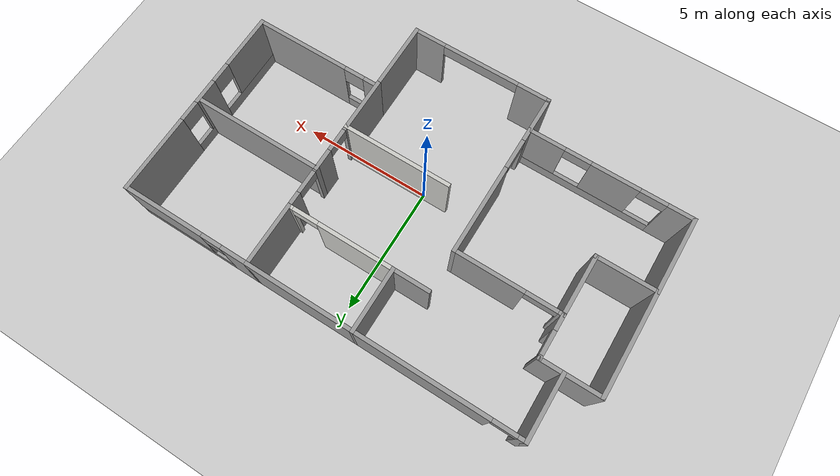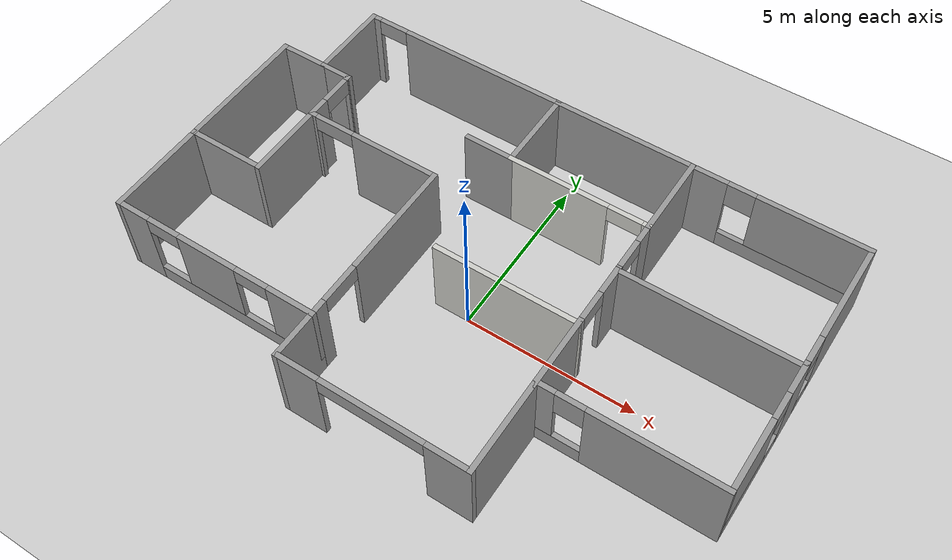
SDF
<sdf version="1.7">
 <world name="default">
  <model name="ground_plane">
   <static>1</static>
   <link name="link">
    <collision name="collision">
     <geometry><plane><normal>0 0 1</normal><size>100 100</size></plane></geometry>
     <surface>
      <contact><collide_bitmask>65535</collide_bitmask></contact>
      <friction><ode><mu>100</mu><mu2>50</mu2></ode></friction>
     </surface>
    </collision>
    <visual name="visual">
     <cast_shadows>0</cast_shadows>
     <geometry><plane><normal>0 0 1</normal><size>100 100</size></plane></geometry>
     <material>
      <script><uri>file://media/materials/scripts/gazebo.material</uri><name>Gazebo/Grey</name></script>
     </material>
    </visual>
   </link>
  </model>
  <gravity>0 0 -9.8</gravity>
  <magnetic_field>6e-06 2.3e-05 -4.2e-05</magnetic_field>
  <atmosphere type="adiabatic"/>
  <physics type="ode">
   <max_step_size>0.001</max_step_size>
   <real_time_factor>1</real_time_factor>
   <real_time_update_rate>1000</real_time_update_rate>
  </physics>
  <scene><ambient>0.4 0.4 0.4 1</ambient><background>0.7 0.7 0.7 1</background><shadows>1</shadows></scene>
  <spherical_coordinates>
   <surface_model>EARTH_WGS84</surface_model>
   <latitude_deg>0</latitude_deg>
   <longitude_deg>0</longitude_deg>
   <elevation>0</elevation>
   <heading_deg>0</heading_deg>
  </spherical_coordinates>
  <model name="Untitled">
   <pose>-0.166269 0.662107 0 0 -0 0</pose>
   <link name="Wall_109">
    <collision name="Wall_109_Collision">
     <geometry><box><size>4.25 0.15 2.5</size></box></geometry>
     <pose>0 0 1.25 0 -0 0</pose>
    </collision>
    <visual name="Wall_109_Visual">
     <pose>0 0 1.25 0 -0 0</pose>
     <geometry><box><size>4.25 0.15 2.5</size></box></geometry>
     <material>
      <script><uri>file://media/materials/scripts/gazebo.material</uri><name>Gazebo/CeilingTiled</name></script>
      <ambient>1 1 1 1</ambient>
     </material>
     <meta><layer>0</layer></meta>
    </visual>
    <pose>1.275 -0.6 0 0 -0 0</pose>
   </link>
   <link name="Wall_113">
    <collision name="Wall_113_Collision">
     <geometry><box><size>2.5 0.15 2.5</size></box></geometry>
     <pose>0 0 1.25 0 -0 0</pose>
    </collision>
    <visual name="Wall_113_Visual">
     <pose>0 0 1.25 0 -0 0</pose>
     <geometry><box><size>2.5 0.15 2.5</size></box></geometry>
     <material>
      <script><uri>file://media/materials/scripts/gazebo.material</uri><name>Gazebo/Grey</name></script>
      <ambient>1 1 1 1</ambient>
     </material>
     <meta><layer>0</layer></meta>
    </visual>
    <pose>-0.775 4.025 0 0 -0 1.5708</pose>
   </link>
   <link name="Wall_115">
    <collision name="Wall_115_Collision">
     <geometry><box><size>2.5 0.15 2.5</size></box></geometry>
     <pose>0 0 1.25 0 -0 0</pose>
    </collision>
    <visual name="Wall_115_Visual">
     <pose>0 0 1.25 0 -0 0</pose>
     <geometry><box><size>2.5 0.15 2.5</size></box></geometry>
     <material>
      <script><uri>file://media/materials/scripts/gazebo.material</uri><name>Gazebo/Grey</name></script>
      <ambient>1 1 1 1</ambient>
     </material>
     <meta><layer>0</layer></meta>
    </visual>
    <pose>3.325 4.025 0 0 -0 1.5708</pose>
   </link>
   <link name="Wall_119">
    <pose>1.275 2.85 0 0 -0 0</pose>
    <visual name="Wall_119_Visual_0">
     <pose>-0.621896 0 1.25 0 -0 0</pose>
     <geometry><box><size>3.00621 0.15 2.5</size></box></geometry>
     <material>
      <script><uri>file://media/materials/scripts/gazebo.material</uri><name>Gazebo/CeilingTiled</name></script>
      <ambient>1 1 1 1</ambient>
     </material>
     <meta><layer>0</layer></meta>
    </visual>
    <collision name="Wall_119_Collision_0">
     <geometry><box><size>3.00621 0.15 2.5</size></box></geometry>
     <pose>-0.621896 0 1.25 0 -0 0</pose>
    </collision>
    <visual name="Wall_119_Visual_1">
     <pose>2.0031 0 1.25 0 -0 0</pose>
     <geometry><box><size>0.243793 0.15 2.5</size></box></geometry>
     <material>
      <script><uri>file://media/materials/scripts/gazebo.material</uri><name>Gazebo/CeilingTiled</name></script>
      <ambient>1 1 1 1</ambient>
     </material>
     <meta><layer>0</layer></meta>
    </visual>
    <collision name="Wall_119_Collision_1">
     <geometry><box><size>0.243793 0.15 2.5</size></box></geometry>
     <pose>2.0031 0 1.25 0 -0 0</pose>
    </collision>
    <visual name="Wall_119_Visual_2">
     <pose>1.38121 0 2.25 0 -0 0</pose>
     <geometry><box><size>1 0.15 0.5</size></box></geometry>
     <material>
      <script><uri>file://media/materials/scripts/gazebo.material</uri><name>Gazebo/CeilingTiled</name></script>
      <ambient>1 1 1 1</ambient>
     </material>
     <meta><layer>0</layer></meta>
    </visual>
    <collision name="Wall_119_Collision_2">
     <geometry><box><size>1 0.15 0.5</size></box></geometry>
     <pose>1.38121 0 2.25 0 -0 0</pose>
    </collision>
   </link>
   <link name="Wall_122">
    <collision name="Wall_122_Collision">
     <geometry><box><size>3 0.15 2.5</size></box></geometry>
     <pose>0 0 1.25 0 -0 0</pose>
    </collision>
    <visual name="Wall_122_Visual">
     <pose>0 0 1.25 0 -0 0</pose>
     <geometry><box><size>3 0.15 2.5</size></box></geometry>
     <material>
      <script><uri>file://media/materials/scripts/gazebo.material</uri><name>Gazebo/Grey</name></script>
      <ambient>1 1 1 1</ambient>
     </material>
     <meta><layer>0</layer></meta>
    </visual>
    <pose>-8.325 -2.425 0 0 -0 -1.5708</pose>
   </link>
   <link name="Wall_125">
    <collision name="Wall_125_Collision">
     <geometry><box><size>4.25 0.15 2.5</size></box></geometry>
     <pose>0 0 1.25 0 -0 0</pose>
    </collision>
    <visual name="Wall_125_Visual">
     <pose>0 0 1.25 0 -0 0</pose>
     <geometry><box><size>4.25 0.15 2.5</size></box></geometry>
     <material>
      <script><uri>file://media/materials/scripts/gazebo.material</uri><name>Gazebo/Grey</name></script>
      <ambient>1 1 1 1</ambient>
     </material>
     <meta><layer>0</layer></meta>
    </visual>
    <pose>1.275 5.2 0 0 -0 0</pose>
   </link>
   <link name="Wall_20">
    <pose>5.9 5.2 0 0 -0 0</pose>
    <visual name="Wall_20_Visual_0">
     <pose>-2.01568 0 1.25 0 -0 0</pose>
     <geometry><box><size>0.96864 0.15 2.5</size></box></geometry>
     <material>
      <script><uri>file://media/materials/scripts/gazebo.material</uri><name>Gazebo/Grey</name></script>
      <ambient>1 1 1 1</ambient>
     </material>
     <meta><layer>0</layer></meta>
    </visual>
    <collision name="Wall_20_Collision_0">
     <geometry><box><size>0.96864 0.15 2.5</size></box></geometry>
     <pose>-2.01568 0 1.25 0 -0 0</pose>
    </collision>
    <visual name="Wall_20_Visual_1">
     <pose>0.48432 0 0.25 0 -0 0</pose>
     <geometry><box><size>4.03136 0.15 0.5</size></box></geometry>
     <material>
      <script><uri>file://media/materials/scripts/gazebo.material</uri><name>Gazebo/Grey</name></script>
      <ambient>1 1 1 1</ambient>
     </material>
     <meta><layer>0</layer></meta>
    </visual>
    <collision name="Wall_20_Collision_1">
     <geometry><box><size>4.03136 0.15 0.5</size></box></geometry>
     <pose>0.48432 0 0.25 0 -0 0</pose>
    </collision>
    <visual name="Wall_20_Visual_2">
     <pose>0.88432 0 1.5 0 -0 0</pose>
     <geometry><box><size>3.23136 0.15 2</size></box></geometry>
     <material>
      <script><uri>file://media/materials/scripts/gazebo.material</uri><name>Gazebo/Grey</name></script>
      <ambient>1 1 1 1</ambient>
     </material>
     <meta><layer>0</layer></meta>
    </visual>
    <collision name="Wall_20_Collision_2">
     <geometry><box><size>3.23136 0.15 2</size></box></geometry>
     <pose>0.88432 0 1.5 0 -0 0</pose>
    </collision>
    <visual name="Wall_20_Visual_3">
     <pose>-1.13136 0 2.1 0 -0 0</pose>
     <geometry><box><size>0.8 0.15 0.8</size></box></geometry>
     <material>
      <script><uri>file://media/materials/scripts/gazebo.material</uri><name>Gazebo/Grey</name></script>
      <ambient>1 1 1 1</ambient>
     </material>
     <meta><layer>0</layer></meta>
    </visual>
    <collision name="Wall_20_Collision_3">
     <geometry><box><size>0.8 0.15 0.8</size></box></geometry>
     <pose>-1.13136 0 2.1 0 -0 0</pose>
    </collision>
   </link>
   <link name="Wall_22">
    <collision name="Wall_22_Collision">
     <geometry><box><size>2.5 0.15 2.5</size></box></geometry>
     <pose>0 0 1.25 0 -0 0</pose>
    </collision>
    <visual name="Wall_22_Visual">
     <pose>0 0 1.25 0 -0 0</pose>
     <geometry><box><size>2.5 0.15 2.5</size></box></geometry>
     <material>
      <script><uri>file://media/materials/scripts/gazebo.material</uri><name>Gazebo/Grey</name></script>
      <ambient>1 1 1 1</ambient>
     </material>
     <meta><layer>0</layer></meta>
    </visual>
    <pose>-6.975 4.025 0 0 -0 -1.5708</pose>
   </link>
   <link name="Wall_23">
    <collision name="Wall_23_Collision">
     <geometry><box><size>1 0.15 2.5</size></box></geometry>
     <pose>0 0 1.25 0 -0 0</pose>
    </collision>
    <visual name="Wall_23_Visual">
     <pose>0 0 1.25 0 -0 0</pose>
     <geometry><box><size>1 0.15 2.5</size></box></geometry>
     <material>
      <script><uri>file://media/materials/scripts/gazebo.material</uri><name>Gazebo/Grey</name></script>
      <ambient>1 1 1 1</ambient>
     </material>
     <meta><layer>0</layer></meta>
    </visual>
    <pose>-6.55 2.85 0 0 -0 0</pose>
   </link>
   <link name="Wall_25">
    <pose>8.325 3.275 0 0 -0 -1.5708</pose>
    <visual name="Wall_25_Visual_0">
     <pose>-0.471274 0 1.25 0 -0 0</pose>
     <geometry><box><size>3.05745 0.15 2.5</size></box></geometry>
     <material>
      <script><uri>file://media/materials/scripts/gazebo.material</uri><name>Gazebo/Grey</name></script>
      <ambient>1 1 1 1</ambient>
     </material>
     <meta><layer>0</layer></meta>
    </visual>
    <collision name="Wall_25_Collision_0">
     <geometry><box><size>3.05745 0.15 2.5</size></box></geometry>
     <pose>-0.471274 0 1.25 0 -0 0</pose>
    </collision>
    <visual name="Wall_25_Visual_1">
     <pose>1.52873 0 0.25 0 -0 0</pose>
     <geometry><box><size>0.942548 0.15 0.5</size></box></geometry>
     <material>
      <script><uri>file://media/materials/scripts/gazebo.material</uri><name>Gazebo/Grey</name></script>
      <ambient>1 1 1 1</ambient>
     </material>
     <meta><layer>0</layer></meta>
    </visual>
    <collision name="Wall_25_Collision_1">
     <geometry><box><size>0.942548 0.15 0.5</size></box></geometry>
     <pose>1.52873 0 0.25 0 -0 0</pose>
    </collision>
    <visual name="Wall_25_Visual_2">
     <pose>1.92873 0 1.5 0 -0 0</pose>
     <geometry><box><size>0.142548 0.15 2</size></box></geometry>
     <material>
      <script><uri>file://media/materials/scripts/gazebo.material</uri><name>Gazebo/Grey</name></script>
      <ambient>1 1 1 1</ambient>
     </material>
     <meta><layer>0</layer></meta>
    </visual>
    <collision name="Wall_25_Collision_2">
     <geometry><box><size>0.142548 0.15 2</size></box></geometry>
     <pose>1.92873 0 1.5 0 -0 0</pose>
    </collision>
    <visual name="Wall_25_Visual_3">
     <pose>1.45745 0 2.1 0 -0 0</pose>
     <geometry><box><size>0.8 0.15 0.8</size></box></geometry>
     <material>
      <script><uri>file://media/materials/scripts/gazebo.material</uri><name>Gazebo/Grey</name></script>
      <ambient>1 1 1 1</ambient>
     </material>
     <meta><layer>0</layer></meta>
    </visual>
    <collision name="Wall_25_Collision_3">
     <geometry><box><size>0.8 0.15 0.8</size></box></geometry>
     <pose>1.45745 0 2.1 0 -0 0</pose>
    </collision>
   </link>
   <link name="Wall_29">
    <pose>8.325 -0.575 0 0 -0 -1.5708</pose>
    <visual name="Wall_29_Visual_0">
     <pose>-1.49775 0 1.25 0 -0 0</pose>
     <geometry><box><size>1.0045 0.15 2.5</size></box></geometry>
     <material>
      <script><uri>file://media/materials/scripts/gazebo.material</uri><name>Gazebo/Grey</name></script>
      <ambient>1 1 1 1</ambient>
     </material>
     <meta><layer>0</layer></meta>
    </visual>
    <collision name="Wall_29_Collision_0">
     <geometry><box><size>1.0045 0.15 2.5</size></box></geometry>
     <pose>-1.49775 0 1.25 0 -0 0</pose>
    </collision>
    <visual name="Wall_29_Visual_1">
     <pose>0.502252 0 0.25 0 -0 0</pose>
     <geometry><box><size>2.9955 0.15 0.5</size></box></geometry>
     <material>
      <script><uri>file://media/materials/scripts/gazebo.material</uri><name>Gazebo/Grey</name></script>
      <ambient>1 1 1 1</ambient>
     </material>
     <meta><layer>0</layer></meta>
    </visual>
    <collision name="Wall_29_Collision_1">
     <geometry><box><size>2.9955 0.15 0.5</size></box></geometry>
     <pose>0.502252 0 0.25 0 -0 0</pose>
    </collision>
    <visual name="Wall_29_Visual_2">
     <pose>0.902252 0 1.5 0 -0 0</pose>
     <geometry><box><size>2.1955 0.15 2</size></box></geometry>
     <material>
      <script><uri>file://media/materials/scripts/gazebo.material</uri><name>Gazebo/Grey</name></script>
      <ambient>1 1 1 1</ambient>
     </material>
     <meta><layer>0</layer></meta>
    </visual>
    <collision name="Wall_29_Collision_2">
     <geometry><box><size>2.1955 0.15 2</size></box></geometry>
     <pose>0.902252 0 1.5 0 -0 0</pose>
    </collision>
    <visual name="Wall_29_Visual_3">
     <pose>-0.595497 0 2.1 0 -0 0</pose>
     <geometry><box><size>0.8 0.15 0.8</size></box></geometry>
     <material>
      <script><uri>file://media/materials/scripts/gazebo.material</uri><name>Gazebo/Grey</name></script>
      <ambient>1 1 1 1</ambient>
     </material>
     <meta><layer>0</layer></meta>
    </visual>
    <collision name="Wall_29_Collision_3">
     <geometry><box><size>0.8 0.15 0.8</size></box></geometry>
     <pose>-0.595497 0 2.1 0 -0 0</pose>
    </collision>
   </link>
   <link name="Wall_34">
    <pose>3.325 2.05 0 0 -0 -1.5708</pose>
    <visual name="Wall_34_Visual_0">
     <pose>-0.556224 0 1.25 0 -0 0</pose>
     <geometry><box><size>0.637552 0.15 2.5</size></box></geometry>
     <material>
      <script><uri>file://media/materials/scripts/gazebo.material</uri><name>Gazebo/Grey</name></script>
      <ambient>1 1 1 1</ambient>
     </material>
     <meta><layer>0</layer></meta>
    </visual>
    <collision name="Wall_34_Collision_0">
     <geometry><box><size>0.637552 0.15 2.5</size></box></geometry>
     <pose>-0.556224 0 1.25 0 -0 0</pose>
    </collision>
    <visual name="Wall_34_Visual_1">
     <pose>0.768776 0 1.25 0 -0 0</pose>
     <geometry><box><size>0.212448 0.15 2.5</size></box></geometry>
     <material>
      <script><uri>file://media/materials/scripts/gazebo.material</uri><name>Gazebo/Grey</name></script>
      <ambient>1 1 1 1</ambient>
     </material>
     <meta><layer>0</layer></meta>
    </visual>
    <collision name="Wall_34_Collision_1">
     <geometry><box><size>0.212448 0.15 2.5</size></box></geometry>
     <pose>0.768776 0 1.25 0 -0 0</pose>
    </collision>
    <visual name="Wall_34_Visual_2">
     <pose>0.212552 0 2.25 0 -0 0</pose>
     <geometry><box><size>0.9 0.15 0.5</size></box></geometry>
     <material>
      <script><uri>file://media/materials/scripts/gazebo.material</uri><name>Gazebo/Grey</name></script>
      <ambient>1 1 1 1</ambient>
     </material>
     <meta><layer>0</layer></meta>
    </visual>
    <collision name="Wall_34_Collision_2">
     <geometry><box><size>0.9 0.15 0.5</size></box></geometry>
     <pose>0.212552 0 2.25 0 -0 0</pose>
    </collision>
   </link>
   <link name="Wall_37">
    <pose>3.325 -0.675 0 0 -0 -1.5708</pose>
    <visual name="Wall_37_Visual_0">
     <pose>-1.5687 0 1.25 0 -0 0</pose>
     <geometry><box><size>0.862602 0.15 2.5</size></box></geometry>
     <material>
      <script><uri>file://media/materials/scripts/gazebo.material</uri><name>Gazebo/Grey</name></script>
      <ambient>1 1 1 1</ambient>
     </material>
     <meta><layer>0</layer></meta>
    </visual>
    <collision name="Wall_37_Collision_0">
     <geometry><box><size>0.862602 0.15 2.5</size></box></geometry>
     <pose>-1.5687 0 1.25 0 -0 0</pose>
    </collision>
    <visual name="Wall_37_Visual_1">
     <pose>0.881301 0 1.25 0 -0 0</pose>
     <geometry><box><size>2.2374 0.15 2.5</size></box></geometry>
     <material>
      <script><uri>file://media/materials/scripts/gazebo.material</uri><name>Gazebo/Grey</name></script>
      <ambient>1 1 1 1</ambient>
     </material>
     <meta><layer>0</layer></meta>
    </visual>
    <collision name="Wall_37_Collision_1">
     <geometry><box><size>2.2374 0.15 2.5</size></box></geometry>
     <pose>0.881301 0 1.25 0 -0 0</pose>
    </collision>
    <visual name="Wall_37_Visual_2">
     <pose>-0.687398 0 2.25 0 -0 0</pose>
     <geometry><box><size>0.9 0.15 0.5</size></box></geometry>
     <material>
      <script><uri>file://media/materials/scripts/gazebo.material</uri><name>Gazebo/Grey</name></script>
      <ambient>1 1 1 1</ambient>
     </material>
     <meta><layer>0</layer></meta>
    </visual>
    <collision name="Wall_37_Collision_2">
     <geometry><box><size>0.9 0.15 0.5</size></box></geometry>
     <pose>-0.687398 0 2.25 0 -0 0</pose>
    </collision>
   </link>
   <link name="Wall_43">
    <collision name="Wall_43_Collision">
     <geometry><box><size>1.5 0.15 2.5</size></box></geometry>
     <pose>0 0 1.25 0 -0 0</pose>
    </collision>
    <visual name="Wall_43_Visual">
     <pose>0 0 1.25 0 -0 0</pose>
     <geometry><box><size>1.5 0.15 2.5</size></box></geometry>
     <material>
      <script><uri>file://media/materials/scripts/gazebo.material</uri><name>Gazebo/Grey</name></script>
      <ambient>1 1 1 1</ambient>
     </material>
     <meta><layer>0</layer></meta>
    </visual>
    <pose>-1.45 2.85 0 0 -0 3.14159</pose>
   </link>
   <link name="Wall_45">
    <collision name="Wall_45_Collision">
     <geometry><box><size>1.5 0.15 2.5</size></box></geometry>
     <pose>0 0 1.25 0 -0 0</pose>
    </collision>
    <visual name="Wall_45_Visual">
     <pose>0 0 1.25 0 -0 0</pose>
     <geometry><box><size>1.5 0.15 2.5</size></box></geometry>
     <material>
      <script><uri>file://media/materials/scripts/gazebo.material</uri><name>Gazebo/Grey</name></script>
      <ambient>1 1 1 1</ambient>
     </material>
     <meta><layer>0</layer></meta>
    </visual>
    <pose>-7.65 2.85 0 0 -0 3.14159</pose>
   </link>
   <link name="Wall_46">
    <collision name="Wall_46_Collision">
     <geometry><box><size>4 0.15 2.5</size></box></geometry>
     <pose>0 0 1.25 0 -0 0</pose>
    </collision>
    <visual name="Wall_46_Visual">
     <pose>0 0 1.25 0 -0 0</pose>
     <geometry><box><size>4 0.15 2.5</size></box></geometry>
     <material>
      <script><uri>file://media/materials/scripts/gazebo.material</uri><name>Gazebo/Grey</name></script>
      <ambient>1 1 1 1</ambient>
     </material>
     <meta><layer>0</layer></meta>
    </visual>
    <pose>-8.325 0.925 0 0 -0 -1.5708</pose>
   </link>
   <link name="Wall_47">
    <collision name="Wall_47_Collision">
     <geometry><box><size>2.35 0.15 2.5</size></box></geometry>
     <pose>0 0 1.25 0 -0 0</pose>
    </collision>
    <visual name="Wall_47_Visual">
     <pose>0 0 1.25 0 -0 0</pose>
     <geometry><box><size>2.35 0.15 2.5</size></box></geometry>
     <material>
      <script><uri>file://media/materials/scripts/gazebo.material</uri><name>Gazebo/Grey</name></script>
      <ambient>1 1 1 1</ambient>
     </material>
     <meta><layer>0</layer></meta>
    </visual>
    <pose>-7.225 -1 0 0 -0 0</pose>
   </link>
   <link name="Wall_48">
    <pose>-6.125 0.925 0 0 -0 1.5708</pose>
    <visual name="Wall_48_Visual_0">
     <pose>-0.549377 0 1.25 0 -0 0</pose>
     <geometry><box><size>2.90125 0.15 2.5</size></box></geometry>
     <material>
      <script><uri>file://media/materials/scripts/gazebo.material</uri><name>Gazebo/Grey</name></script>
      <ambient>1 1 1 1</ambient>
     </material>
     <meta><layer>0</layer></meta>
    </visual>
    <collision name="Wall_48_Collision_0">
     <geometry><box><size>2.90125 0.15 2.5</size></box></geometry>
     <pose>-0.549377 0 1.25 0 -0 0</pose>
    </collision>
    <visual name="Wall_48_Visual_1">
     <pose>1.90062 0 1.25 0 -0 0</pose>
     <geometry><box><size>0.198753 0.15 2.5</size></box></geometry>
     <material>
      <script><uri>file://media/materials/scripts/gazebo.material</uri><name>Gazebo/Grey</name></script>
      <ambient>1 1 1 1</ambient>
     </material>
     <meta><layer>0</layer></meta>
    </visual>
    <collision name="Wall_48_Collision_1">
     <geometry><box><size>0.198753 0.15 2.5</size></box></geometry>
     <pose>1.90062 0 1.25 0 -0 0</pose>
    </collision>
    <visual name="Wall_48_Visual_2">
     <pose>1.35125 0 2.25 0 -0 0</pose>
     <geometry><box><size>0.9 0.15 0.5</size></box></geometry>
     <material>
      <script><uri>file://media/materials/scripts/gazebo.material</uri><name>Gazebo/Grey</name></script>
      <ambient>1 1 1 1</ambient>
     </material>
     <meta><layer>0</layer></meta>
    </visual>
    <collision name="Wall_48_Collision_2">
     <geometry><box><size>0.9 0.15 0.5</size></box></geometry>
     <pose>1.35125 0 2.25 0 -0 0</pose>
    </collision>
   </link>
   <link name="Wall_50">
    <pose>-4.19901 1.25028 0 0 -0 0</pose>
    <visual name="Wall_50_Visual_0">
     <pose>-1.87691 0 1.25 0 -0 0</pose>
     <geometry><box><size>0.246179 0.15 2.5</size></box></geometry>
     <material>
      <script><uri>file://media/materials/scripts/gazebo.material</uri><name>Gazebo/Grey</name></script>
      <ambient>1 1 1 1</ambient>
     </material>
     <meta><layer>0</layer></meta>
    </visual>
    <collision name="Wall_50_Collision_0">
     <geometry><box><size>0.246179 0.15 2.5</size></box></geometry>
     <pose>-1.87691 0 1.25 0 -0 0</pose>
    </collision>
    <visual name="Wall_50_Visual_1">
     <pose>0.723089 0 1.25 0 -0 0</pose>
     <geometry><box><size>2.55382 0.15 2.5</size></box></geometry>
     <material>
      <script><uri>file://media/materials/scripts/gazebo.material</uri><name>Gazebo/Grey</name></script>
      <ambient>1 1 1 1</ambient>
     </material>
     <meta><layer>0</layer></meta>
    </visual>
    <collision name="Wall_50_Collision_1">
     <geometry><box><size>2.55382 0.15 2.5</size></box></geometry>
     <pose>0.723089 0 1.25 0 -0 0</pose>
    </collision>
    <visual name="Wall_50_Visual_2">
     <pose>-1.15382 0 2.25 0 -0 0</pose>
     <geometry><box><size>1.2 0.15 0.5</size></box></geometry>
     <material>
      <script><uri>file://media/materials/scripts/gazebo.material</uri><name>Gazebo/Grey</name></script>
      <ambient>1 1 1 1</ambient>
     </material>
     <meta><layer>0</layer></meta>
    </visual>
    <collision name="Wall_50_Collision_2">
     <geometry><box><size>1.2 0.15 0.5</size></box></geometry>
     <pose>-1.15382 0 2.25 0 -0 0</pose>
    </collision>
   </link>
   <link name="Wall_55">
    <pose>-5.175 -3.85 0 0 -0 0</pose>
    <visual name="Wall_55_Visual_0">
     <pose>-2.64997 0 1.25 0 -0 0</pose>
     <geometry><box><size>0.950063 0.15 2.5</size></box></geometry>
     <material>
      <script><uri>file://media/materials/scripts/gazebo.material</uri><name>Gazebo/Grey</name></script>
      <ambient>1 1 1 1</ambient>
     </material>
     <meta><layer>0</layer></meta>
    </visual>
    <collision name="Wall_55_Collision_0">
     <geometry><box><size>0.950063 0.15 2.5</size></box></geometry>
     <pose>-2.64997 0 1.25 0 -0 0</pose>
    </collision>
    <visual name="Wall_55_Visual_1">
     <pose>0.475031 0 0.25 0 -0 0</pose>
     <geometry><box><size>5.29994 0.15 0.5</size></box></geometry>
     <material>
      <script><uri>file://media/materials/scripts/gazebo.material</uri><name>Gazebo/Grey</name></script>
      <ambient>1 1 1 1</ambient>
     </material>
     <meta><layer>0</layer></meta>
    </visual>
    <collision name="Wall_55_Collision_1">
     <geometry><box><size>5.29994 0.15 0.5</size></box></geometry>
     <pose>0.475031 0 0.25 0 -0 0</pose>
    </collision>
    <visual name="Wall_55_Visual_2">
     <pose>-0.253452 0 1.5 0 -0 0</pose>
     <geometry><box><size>1.84297 0.15 2</size></box></geometry>
     <material>
      <script><uri>file://media/materials/scripts/gazebo.material</uri><name>Gazebo/Grey</name></script>
      <ambient>1 1 1 1</ambient>
     </material>
     <meta><layer>0</layer></meta>
    </visual>
    <collision name="Wall_55_Collision_2">
     <geometry><box><size>1.84297 0.15 2</size></box></geometry>
     <pose>-0.253452 0 1.5 0 -0 0</pose>
    </collision>
    <visual name="Wall_55_Visual_3">
     <pose>2.39652 0 1.5 0 -0 0</pose>
     <geometry><box><size>1.45697 0.15 2</size></box></geometry>
     <material>
      <script><uri>file://media/materials/scripts/gazebo.material</uri><name>Gazebo/Grey</name></script>
      <ambient>1 1 1 1</ambient>
     </material>
     <meta><layer>0</layer></meta>
    </visual>
    <collision name="Wall_55_Collision_3">
     <geometry><box><size>1.45697 0.15 2</size></box></geometry>
     <pose>2.39652 0 1.5 0 -0 0</pose>
    </collision>
    <visual name="Wall_55_Visual_4">
     <pose>-1.67494 0 2.25 0 -0 0</pose>
     <geometry><box><size>1 0.15 0.5</size></box></geometry>
     <material>
      <script><uri>file://media/materials/scripts/gazebo.material</uri><name>Gazebo/Grey</name></script>
      <ambient>1 1 1 1</ambient>
     </material>
     <meta><layer>0</layer></meta>
    </visual>
    <collision name="Wall_55_Collision_4">
     <geometry><box><size>1 0.15 0.5</size></box></geometry>
     <pose>-1.67494 0 2.25 0 -0 0</pose>
    </collision>
    <visual name="Wall_55_Visual_5">
     <pose>1.16803 0 2.25 0 -0 0</pose>
     <geometry><box><size>1 0.15 0.5</size></box></geometry>
     <material>
      <script><uri>file://media/materials/scripts/gazebo.material</uri><name>Gazebo/Grey</name></script>
      <ambient>1 1 1 1</ambient>
     </material>
     <meta><layer>0</layer></meta>
    </visual>
    <collision name="Wall_55_Collision_5">
     <geometry><box><size>1 0.15 0.5</size></box></geometry>
     <pose>1.16803 0 2.25 0 -0 0</pose>
    </collision>
   </link>
   <link name="Wall_64">
    <pose>-2.125 -1.3 0 0 -0 -1.5708</pose>
    <visual name="Wall_64_Visual_0">
     <pose>-0.868129 0 1.25 0 -0 0</pose>
     <geometry><box><size>3.51374 0.15 2.5</size></box></geometry>
     <material>
      <script><uri>file://media/materials/scripts/gazebo.material</uri><name>Gazebo/Grey</name></script>
      <ambient>1 1 1 1</ambient>
     </material>
     <meta><layer>0</layer></meta>
    </visual>
    <collision name="Wall_64_Collision_0">
     <geometry><box><size>3.51374 0.15 2.5</size></box></geometry>
     <pose>-0.868129 0 1.25 0 -0 0</pose>
    </collision>
    <visual name="Wall_64_Visual_1">
     <pose>2.35687 0 1.25 0 -0 0</pose>
     <geometry><box><size>0.536258 0.15 2.5</size></box></geometry>
     <material>
      <script><uri>file://media/materials/scripts/gazebo.material</uri><name>Gazebo/Grey</name></script>
      <ambient>1 1 1 1</ambient>
     </material>
     <meta><layer>0</layer></meta>
    </visual>
    <collision name="Wall_64_Collision_1">
     <geometry><box><size>0.536258 0.15 2.5</size></box></geometry>
     <pose>2.35687 0 1.25 0 -0 0</pose>
    </collision>
    <visual name="Wall_64_Visual_2">
     <pose>1.48874 0 2.25 0 -0 0</pose>
     <geometry><box><size>1.2 0.15 0.5</size></box></geometry>
     <material>
      <script><uri>file://media/materials/scripts/gazebo.material</uri><name>Gazebo/Grey</name></script>
      <ambient>1 1 1 1</ambient>
     </material>
     <meta><layer>0</layer></meta>
    </visual>
    <collision name="Wall_64_Collision_2">
     <geometry><box><size>1.2 0.15 0.5</size></box></geometry>
     <pose>1.48874 0 2.25 0 -0 0</pose>
    </collision>
   </link>
   <link name="Wall_71">
    <collision name="Wall_71_Collision">
     <geometry><box><size>1.5 0.15 2.5</size></box></geometry>
     <pose>0 0 1.25 0 -0 0</pose>
    </collision>
    <visual name="Wall_71_Visual">
     <pose>0 0 1.25 0 -0 0</pose>
     <geometry><box><size>1.5 0.15 2.5</size></box></geometry>
     <material>
      <script><uri>file://media/materials/scripts/gazebo.material</uri><name>Gazebo/Grey</name></script>
      <ambient>1 1 1 1</ambient>
     </material>
     <meta><layer>0</layer></meta>
    </visual>
    <pose>-2.125 -4.525 0 0 -0 -1.5708</pose>
   </link>
   <link name="Wall_8">
    <pose>-3.925 5.2 0 0 -0 0</pose>
    <visual name="Wall_8_Visual_0">
     <pose>-2.94576 0 1.25 0 -0 0</pose>
     <geometry><box><size>0.358482 0.15 2.5</size></box></geometry>
     <material>
      <script><uri>file://media/materials/scripts/gazebo.material</uri><name>Gazebo/Grey</name></script>
      <ambient>1 1 1 1</ambient>
     </material>
     <meta><layer>0</layer></meta>
    </visual>
    <collision name="Wall_8_Collision_0">
     <geometry><box><size>0.358482 0.15 2.5</size></box></geometry>
     <pose>-2.94576 0 1.25 0 -0 0</pose>
    </collision>
    <visual name="Wall_8_Visual_1">
     <pose>0.629241 0 1.25 0 -0 0</pose>
     <geometry><box><size>4.99152 0.15 2.5</size></box></geometry>
     <material>
      <script><uri>file://media/materials/scripts/gazebo.material</uri><name>Gazebo/Grey</name></script>
      <ambient>1 1 1 1</ambient>
     </material>
     <meta><layer>0</layer></meta>
    </visual>
    <collision name="Wall_8_Collision_1">
     <geometry><box><size>4.99152 0.15 2.5</size></box></geometry>
     <pose>0.629241 0 1.25 0 -0 0</pose>
    </collision>
    <visual name="Wall_8_Visual_2">
     <pose>-2.31652 0 2.25 0 -0 0</pose>
     <geometry><box><size>0.9 0.15 0.5</size></box></geometry>
     <material>
      <script><uri>file://media/materials/scripts/gazebo.material</uri><name>Gazebo/Grey</name></script>
      <ambient>1 1 1 1</ambient>
     </material>
     <meta><layer>0</layer></meta>
    </visual>
    <collision name="Wall_8_Collision_2">
     <geometry><box><size>0.9 0.15 0.5</size></box></geometry>
     <pose>-2.31652 0 2.25 0 -0 0</pose>
    </collision>
   </link>
   <link name="Wall_89">
    <pose>5.9 -2.5 0 0 -0 3.14159</pose>
    <visual name="Wall_89_Visual_0">
     <pose>-0.627836 0 1.25 0 -0 0</pose>
     <geometry><box><size>3.74433 0.15 2.5</size></box></geometry>
     <material>
      <script><uri>file://media/materials/scripts/gazebo.material</uri><name>Gazebo/Grey</name></script>
      <ambient>1 1 1 1</ambient>
     </material>
     <meta><layer>0</layer></meta>
    </visual>
    <collision name="Wall_89_Collision_0">
     <geometry><box><size>3.74433 0.15 2.5</size></box></geometry>
     <pose>-0.627836 0 1.25 0 -0 0</pose>
    </collision>
    <visual name="Wall_89_Visual_1">
     <pose>1.87216 0 0.25 0 -0 0</pose>
     <geometry><box><size>1.25567 0.15 0.5</size></box></geometry>
     <material>
      <script><uri>file://media/materials/scripts/gazebo.material</uri><name>Gazebo/Grey</name></script>
      <ambient>1 1 1 1</ambient>
     </material>
     <meta><layer>0</layer></meta>
    </visual>
    <collision name="Wall_89_Collision_1">
     <geometry><box><size>1.25567 0.15 0.5</size></box></geometry>
     <pose>1.87216 0 0.25 0 -0 0</pose>
    </collision>
    <visual name="Wall_89_Visual_2">
     <pose>2.27216 0 1.5 0 -0 0</pose>
     <geometry><box><size>0.455671 0.15 2</size></box></geometry>
     <material>
      <script><uri>file://media/materials/scripts/gazebo.material</uri><name>Gazebo/Grey</name></script>
      <ambient>1 1 1 1</ambient>
     </material>
     <meta><layer>0</layer></meta>
    </visual>
    <collision name="Wall_89_Collision_2">
     <geometry><box><size>0.455671 0.15 2</size></box></geometry>
     <pose>2.27216 0 1.5 0 -0 0</pose>
    </collision>
    <visual name="Wall_89_Visual_3">
     <pose>1.64433 0 2.1 0 -0 0</pose>
     <geometry><box><size>0.8 0.15 0.8</size></box></geometry>
     <material>
      <script><uri>file://media/materials/scripts/gazebo.material</uri><name>Gazebo/Grey</name></script>
      <ambient>1 1 1 1</ambient>
     </material>
     <meta><layer>0</layer></meta>
    </visual>
    <collision name="Wall_89_Collision_3">
     <geometry><box><size>0.8 0.15 0.8</size></box></geometry>
     <pose>1.64433 0 2.1 0 -0 0</pose>
    </collision>
   </link>
   <link name="Wall_92">
    <collision name="Wall_92_Collision">
     <geometry><box><size>2.75 0.15 2.5</size></box></geometry>
     <pose>0 0 1.25 0 -0 0</pose>
    </collision>
    <visual name="Wall_92_Visual">
     <pose>0 0 1.25 0 -0 0</pose>
     <geometry><box><size>2.75 0.15 2.5</size></box></geometry>
     <material>
      <script><uri>file://media/materials/scripts/gazebo.material</uri><name>Gazebo/Grey</name></script>
      <ambient>1 1 1 1</ambient>
     </material>
     <meta><layer>0</layer></meta>
    </visual>
    <pose>3.325 -3.9 0 0 -0 -1.5708</pose>
   </link>
   <link name="Wall_93">
    <pose>0.6 -5.2 0 0 -0 3.14159</pose>
    <visual name="Wall_93_Visual_0">
     <pose>-2.15032 0 1.25 0 -0 0</pose>
     <geometry><box><size>1.29936 0.15 2.5</size></box></geometry>
     <material>
      <script><uri>file://media/materials/scripts/gazebo.material</uri><name>Gazebo/Grey</name></script>
      <ambient>1 1 1 1</ambient>
     </material>
     <meta><layer>0</layer></meta>
    </visual>
    <collision name="Wall_93_Collision_0">
     <geometry><box><size>1.29936 0.15 2.5</size></box></geometry>
     <pose>-2.15032 0 1.25 0 -0 0</pose>
    </collision>
    <visual name="Wall_93_Visual_1">
     <pose>2.14968 0 1.25 0 -0 0</pose>
     <geometry><box><size>1.30064 0.15 2.5</size></box></geometry>
     <material>
      <script><uri>file://media/materials/scripts/gazebo.material</uri><name>Gazebo/Grey</name></script>
      <ambient>1 1 1 1</ambient>
     </material>
     <meta><layer>0</layer></meta>
    </visual>
    <collision name="Wall_93_Collision_1">
     <geometry><box><size>1.30064 0.15 2.5</size></box></geometry>
     <pose>2.14968 0 1.25 0 -0 0</pose>
    </collision>
    <visual name="Wall_93_Visual_2">
     <pose>-0.000639 0 2.25 0 -0 0</pose>
     <geometry><box><size>3 0.15 0.5</size></box></geometry>
     <material>
      <script><uri>file://media/materials/scripts/gazebo.material</uri><name>Gazebo/Grey</name></script>
      <ambient>1 1 1 1</ambient>
     </material>
     <meta><layer>0</layer></meta>
    </visual>
    <collision name="Wall_93_Collision_2">
     <geometry><box><size>3 0.15 0.5</size></box></geometry>
     <pose>-0.000639 0 2.25 0 -0 0</pose>
    </collision>
   </link>
   <link name="Wall_97">
    <collision name="Wall_97_Collision">
     <geometry><box><size>5 0.15 2.5</size></box></geometry>
     <pose>0 0 1.25 0 -0 0</pose>
    </collision>
    <visual name="Wall_97_Visual">
     <pose>0 0 1.25 0 -0 0</pose>
     <geometry><box><size>5 0.15 2.5</size></box></geometry>
     <material>
      <script><uri>file://media/materials/scripts/gazebo.material</uri><name>Gazebo/Grey</name></script>
      <ambient>1 1 1 1</ambient>
     </material>
     <meta><layer>0</layer></meta>
    </visual>
    <pose>5.75 1.25 0 0 -0 0</pose>
   </link>
   <static>1</static>
  </model>
  <light name="user_directional_light_0" type="directional">
   <pose>29.9177 59.4506 1 0 -0 0</pose>
   <diffuse>0.5 0.5 0.5 1</diffuse>
   <specular>0.1 0.1 0.1 1</specular>
   <direction>0.1 0.1 -0.9</direction>
   <attenuation>
    <range>20</range>
    <constant>0.5</constant>
    <linear>0.01</linear>
    <quadratic>0.001</quadratic>
   </attenuation>
  </light>
 </world>
</sdf>
